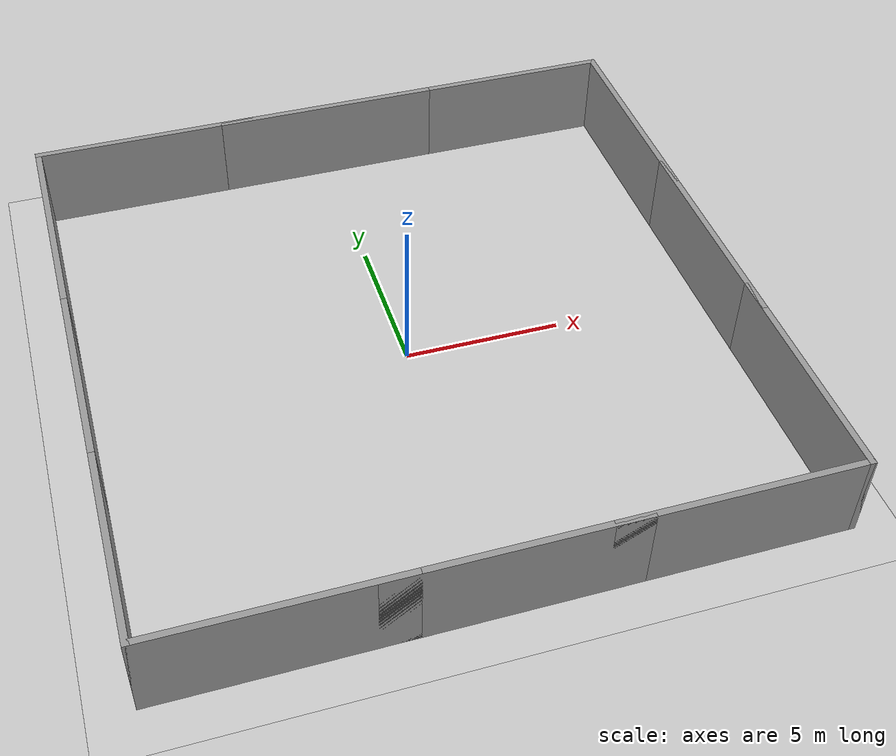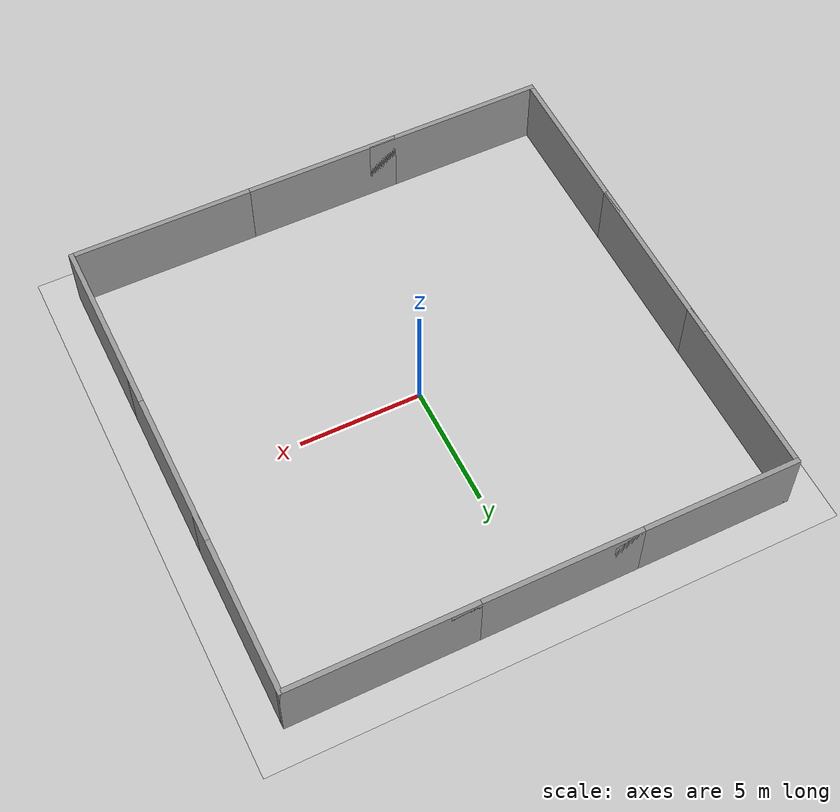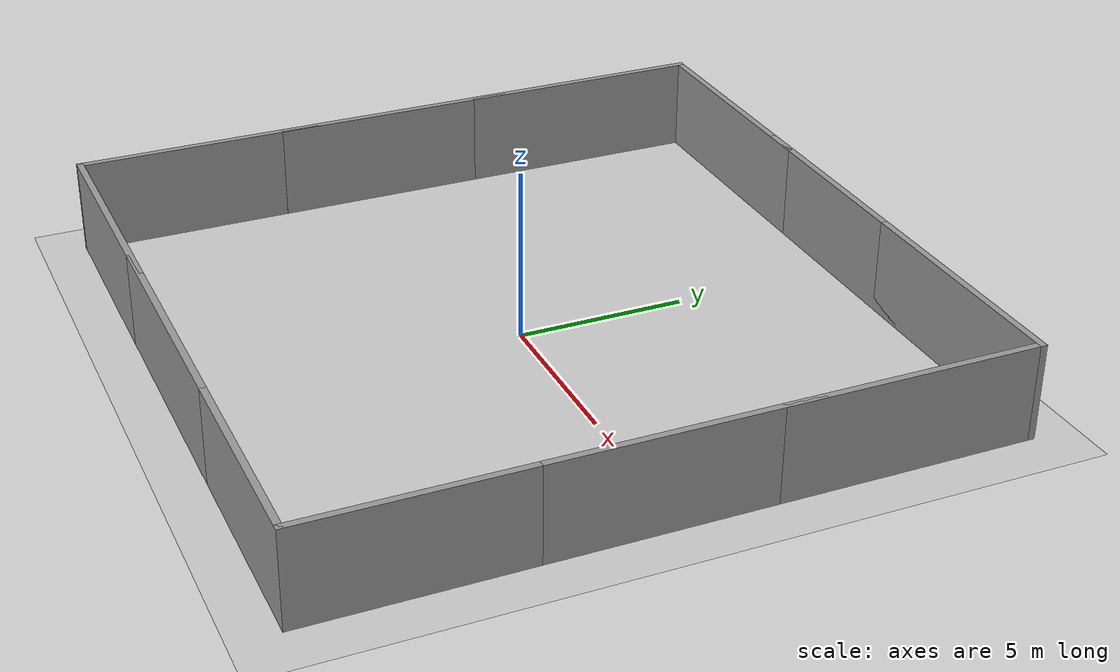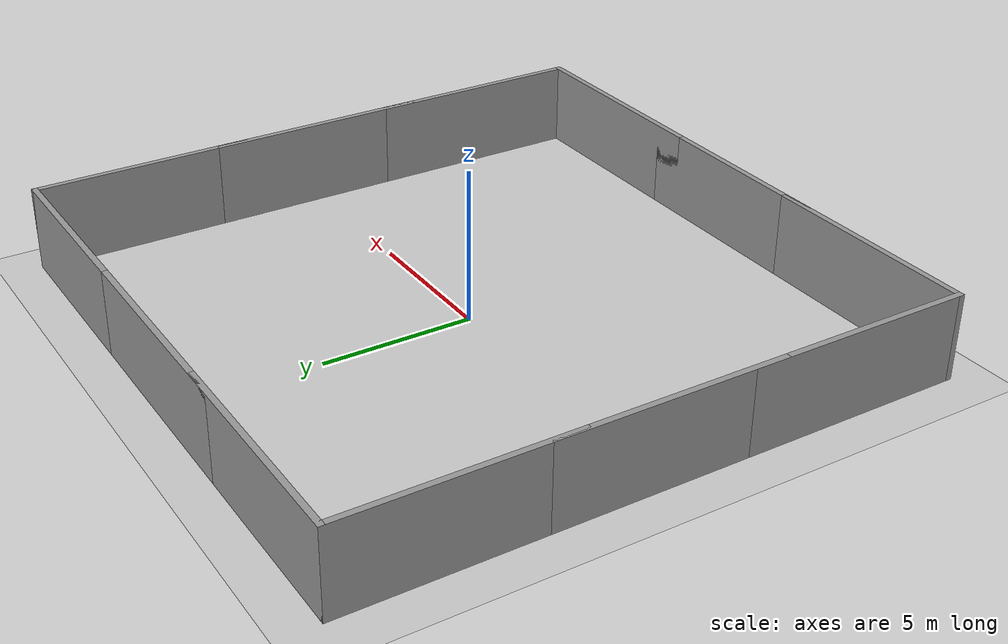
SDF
<sdf version="1.4">
 <world name="default">
  <include><uri>model://sun</uri></include>
  <include><uri>model://ground_plane</uri></include>
  <model name="g0">
   <static>1</static>
   <link name="link">
    <pose>0 0 1.4 0 -0 0</pose>
    <collision name="collision"><geometry><box><size>7.5 0.2 2.8</size></box></geometry></collision>
    <visual name="visual">
     <cast_shadows>0</cast_shadows>
     <geometry><box><size>7.5 0.2 2.8</size></box></geometry>
     <material>
      <script>
       <uri>model://grey_wall/materials/scripts</uri>
       <uri>model://grey_wall/materials/textures</uri>
       <name>vrc/grey_wall</name>
      </script>
     </material>
    </visual>
   </link>
   <pose>10 0 0 0 -0 1.5708</pose>
  </model>
  <model name="g1">
   <static>1</static>
   <link name="link">
    <pose>0 0 1.4 0 -0 0</pose>
    <collision name="collision"><geometry><box><size>7.5 0.2 2.8</size></box></geometry></collision>
    <visual name="visual">
     <cast_shadows>0</cast_shadows>
     <geometry><box><size>7.5 0.2 2.8</size></box></geometry>
     <material>
      <script>
       <uri>model://grey_wall/materials/scripts</uri>
       <uri>model://grey_wall/materials/textures</uri>
       <name>vrc/grey_wall</name>
      </script>
     </material>
    </visual>
   </link>
   <pose>10 6.35 0 0 -0 1.5708</pose>
  </model>
  <model name="g2">
   <static>1</static>
   <link name="link">
    <pose>0 0 1.4 0 -0 0</pose>
    <collision name="collision"><geometry><box><size>7.5 0.2 2.8</size></box></geometry></collision>
    <visual name="visual">
     <cast_shadows>0</cast_shadows>
     <geometry><box><size>7.5 0.2 2.8</size></box></geometry>
     <material>
      <script>
       <uri>model://grey_wall/materials/scripts</uri>
       <uri>model://grey_wall/materials/textures</uri>
       <name>vrc/grey_wall</name>
      </script>
     </material>
    </visual>
   </link>
   <pose>10 -6.35 0 0 -0 1.5708</pose>
  </model>
  <model name="g3">
   <static>1</static>
   <link name="link">
    <pose>0 0 1.4 0 -0 0</pose>
    <collision name="collision"><geometry><box><size>7.5 0.2 2.8</size></box></geometry></collision>
    <visual name="visual">
     <cast_shadows>0</cast_shadows>
     <geometry><box><size>7.5 0.2 2.8</size></box></geometry>
     <material>
      <script>
       <uri>model://grey_wall/materials/scripts</uri>
       <uri>model://grey_wall/materials/textures</uri>
       <name>vrc/grey_wall</name>
      </script>
     </material>
    </visual>
   </link>
   <pose>0 10 0 0 -0 0</pose>
  </model>
  <model name="g4">
   <static>1</static>
   <link name="link">
    <pose>0 0 1.4 0 -0 0</pose>
    <collision name="collision"><geometry><box><size>7.5 0.2 2.8</size></box></geometry></collision>
    <visual name="visual">
     <cast_shadows>0</cast_shadows>
     <geometry><box><size>7.5 0.2 2.8</size></box></geometry>
     <material>
      <script>
       <uri>model://grey_wall/materials/scripts</uri>
       <uri>model://grey_wall/materials/textures</uri>
       <name>vrc/grey_wall</name>
      </script>
     </material>
    </visual>
   </link>
   <pose>6.35 10 0 0 -0 0</pose>
  </model>
  <model name="g5">
   <static>1</static>
   <link name="link">
    <pose>0 0 1.4 0 -0 0</pose>
    <collision name="collision"><geometry><box><size>7.5 0.2 2.8</size></box></geometry></collision>
    <visual name="visual">
     <cast_shadows>0</cast_shadows>
     <geometry><box><size>7.5 0.2 2.8</size></box></geometry>
     <material>
      <script>
       <uri>model://grey_wall/materials/scripts</uri>
       <uri>model://grey_wall/materials/textures</uri>
       <name>vrc/grey_wall</name>
      </script>
     </material>
    </visual>
   </link>
   <pose>-6.35 10 0 0 -0 0</pose>
  </model>
  <model name="g6">
   <static>1</static>
   <link name="link">
    <pose>0 0 1.4 0 -0 0</pose>
    <collision name="collision"><geometry><box><size>7.5 0.2 2.8</size></box></geometry></collision>
    <visual name="visual">
     <cast_shadows>0</cast_shadows>
     <geometry><box><size>7.5 0.2 2.8</size></box></geometry>
     <material>
      <script>
       <uri>model://grey_wall/materials/scripts</uri>
       <uri>model://grey_wall/materials/textures</uri>
       <name>vrc/grey_wall</name>
      </script>
     </material>
    </visual>
   </link>
   <pose>-10 0 0 0 -0 1.5708</pose>
  </model>
  <model name="g7">
   <static>1</static>
   <link name="link">
    <pose>0 0 1.4 0 -0 0</pose>
    <collision name="collision"><geometry><box><size>7.5 0.2 2.8</size></box></geometry></collision>
    <visual name="visual">
     <cast_shadows>0</cast_shadows>
     <geometry><box><size>7.5 0.2 2.8</size></box></geometry>
     <material>
      <script>
       <uri>model://grey_wall/materials/scripts</uri>
       <uri>model://grey_wall/materials/textures</uri>
       <name>vrc/grey_wall</name>
      </script>
     </material>
    </visual>
   </link>
   <pose>-10 6.35 0 0 -0 1.5708</pose>
  </model>
  <model name="g8">
   <static>1</static>
   <link name="link">
    <pose>0 0 1.4 0 -0 0</pose>
    <collision name="collision"><geometry><box><size>7.5 0.2 2.8</size></box></geometry></collision>
    <visual name="visual">
     <cast_shadows>0</cast_shadows>
     <geometry><box><size>7.5 0.2 2.8</size></box></geometry>
     <material>
      <script>
       <uri>model://grey_wall/materials/scripts</uri>
       <uri>model://grey_wall/materials/textures</uri>
       <name>vrc/grey_wall</name>
      </script>
     </material>
    </visual>
   </link>
   <pose>-10 -6.35 0 0 -0 1.5708</pose>
  </model>
  <model name="g9">
   <static>1</static>
   <link name="link">
    <pose>0 0 1.4 0 -0 0</pose>
    <collision name="collision"><geometry><box><size>7.5 0.2 2.8</size></box></geometry></collision>
    <visual name="visual">
     <cast_shadows>0</cast_shadows>
     <geometry><box><size>7.5 0.2 2.8</size></box></geometry>
     <material>
      <script>
       <uri>model://grey_wall/materials/scripts</uri>
       <uri>model://grey_wall/materials/textures</uri>
       <name>vrc/grey_wall</name>
      </script>
     </material>
    </visual>
   </link>
   <pose>0 -10 0 0 -0 0</pose>
  </model>
  <model name="g10">
   <static>1</static>
   <link name="link">
    <pose>0 0 1.4 0 -0 0</pose>
    <collision name="collision"><geometry><box><size>7.5 0.2 2.8</size></box></geometry></collision>
    <visual name="visual">
     <cast_shadows>0</cast_shadows>
     <geometry><box><size>7.5 0.2 2.8</size></box></geometry>
     <material>
      <script>
       <uri>model://grey_wall/materials/scripts</uri>
       <uri>model://grey_wall/materials/textures</uri>
       <name>vrc/grey_wall</name>
      </script>
     </material>
    </visual>
   </link>
   <pose>6.35 -10 0 0 -0 0</pose>
  </model>
  <model name="g11">
   <static>1</static>
   <link name="link">
    <pose>0 0 1.4 0 -0 0</pose>
    <collision name="collision"><geometry><box><size>7.5 0.2 2.8</size></box></geometry></collision>
    <visual name="visual">
     <cast_shadows>0</cast_shadows>
     <geometry><box><size>7.5 0.2 2.8</size></box></geometry>
     <material>
      <script>
       <uri>model://grey_wall/materials/scripts</uri>
       <uri>model://grey_wall/materials/textures</uri>
       <name>vrc/grey_wall</name>
      </script>
     </material>
    </visual>
   </link>
   <pose>-6.35 -10 0 0 -0 0</pose>
  </model>
 </world>
</sdf>
